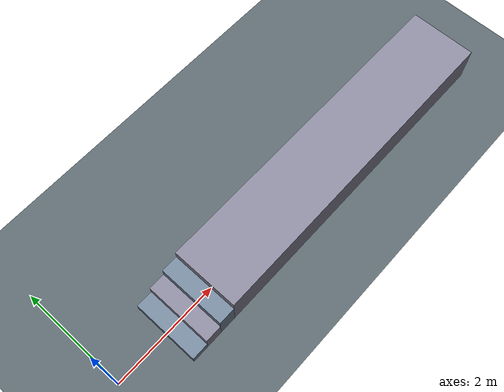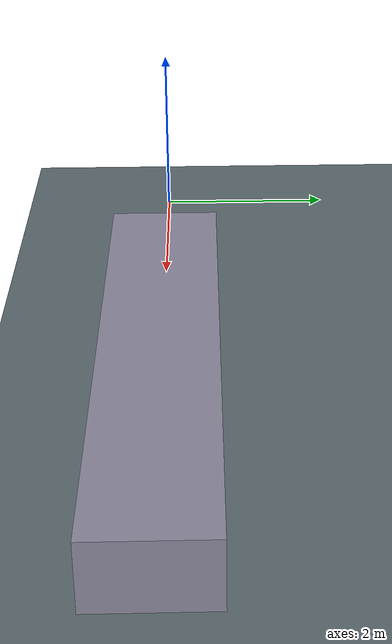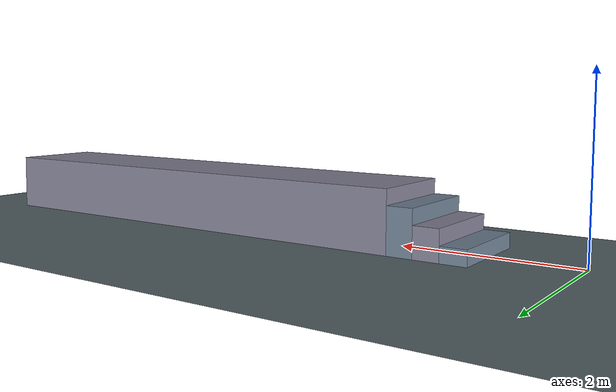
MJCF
<mujoco model="go2-stair-study">
  <option timestep="0.0025" cone="elliptic" impratio="10"/>
  <visual>
    <global azimuth="130" elevation="-20"/>
    <headlight ambient="0.4 0.4 0.4" diffuse="0.7 0.7 0.7"/>
  </visual>
  <worldbody>
    <light pos="0 -3 5" dir="0.2 0.5 -1"/>
    <geom name="floor" type="plane" size="20 20 .1" rgba=".35 .4 .42 1" friction=".8 .02 .01"/>
    <geom name="step_1" type="box" pos="1.15 0 .09" size=".15 .6 .09" rgba=".45 .52 .6 1" friction=".8 .02 .01"/>
    <geom name="step_2" type="box" pos="1.45 0 .18" size=".15 .6 .18" rgba=".53 .52 .6 1" friction=".8 .02 .01"/>
    <geom name="step_3" type="box" pos="1.75 0 .27" size=".15 .6 .27" rgba=".45 .52 .6 1" friction=".8 .02 .01"/>
    <geom name="landing" type="box" pos="4.9 0 .36" size="3 .6 .36" rgba=".53 .52 .6 1" friction=".8 .02 .01"/>
  </worldbody>
</mujoco>
